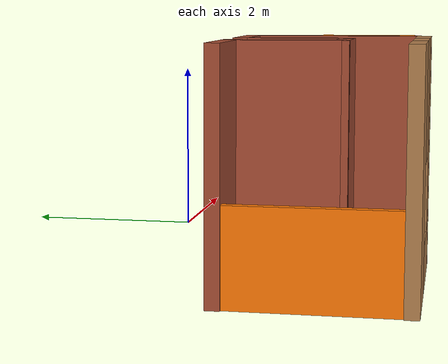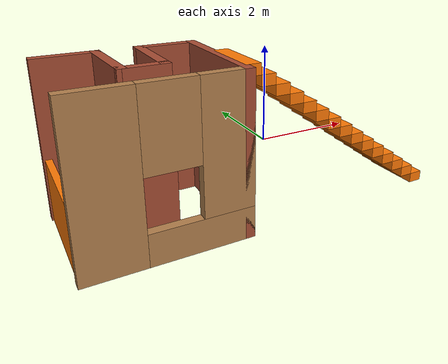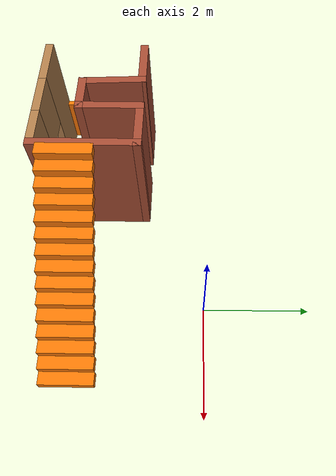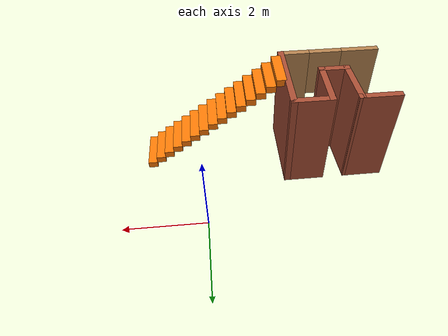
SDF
<?xml version='1.0'?>
<sdf version='1.6'>
  <model name='room_playground'>
    <pose frame=''>-1.4975 -2.12334 0 0 -0 0</pose>
    <link name='Stairs_0'>
      <visual name='Stairs_0_Visual_0'>
        <pose frame=''>2.86083 -0.316664 0.083333 0 -0 -1.5708</pose>
        <geometry>
          <box>
            <size>1 0.233333 0.166667</size>
          </box>
        </geometry>
        <material>
          <script>
            <uri>file://media/materials/scripts/gazebo.material</uri>
            <name>Gazebo/Grey</name>
          </script>
          <ambient>0.996078 0.47451 0.0196078 1</ambient>
        </material>
        <meta>
          <layer>0</layer>
        </meta>
      </visual>
      <collision name='Stairs_0_Collision_0'>
        <geometry>
          <box>
            <size>1 0.233333 0.166667</size>
          </box>
        </geometry>
        <pose frame=''>2.86083 -0.316664 0.083333 0 -0 -1.5708</pose>
      </collision>
      <visual name='Stairs_0_Visual_1'>
        <pose frame=''>2.6275 -0.316664 0.25 0 -0 -1.5708</pose>
        <geometry>
          <box>
            <size>1 0.233333 0.166667</size>
          </box>
        </geometry>
        <material>
          <script>
            <uri>file://media/materials/scripts/gazebo.material</uri>
            <name>Gazebo/Grey</name>
          </script>
          <ambient>0.996078 0.47451 0.0196078 1</ambient>
        </material>
        <meta>
          <layer>0</layer>
        </meta>
      </visual>
      <collision name='Stairs_0_Collision_1'>
        <geometry>
          <box>
            <size>1 0.233333 0.166667</size>
          </box>
        </geometry>
        <pose frame=''>2.6275 -0.316664 0.25 0 -0 -1.5708</pose>
      </collision>
      <visual name='Stairs_0_Visual_2'>
        <pose frame=''>2.39417 -0.316664 0.416667 0 -0 -1.5708</pose>
        <geometry>
          <box>
            <size>1 0.233333 0.166667</size>
          </box>
        </geometry>
        <material>
          <script>
            <uri>file://media/materials/scripts/gazebo.material</uri>
            <name>Gazebo/Grey</name>
          </script>
          <ambient>0.996078 0.47451 0.0196078 1</ambient>
        </material>
        <meta>
          <layer>0</layer>
        </meta>
      </visual>
      <collision name='Stairs_0_Collision_2'>
        <geometry>
          <box>
            <size>1 0.233333 0.166667</size>
          </box>
        </geometry>
        <pose frame=''>2.39417 -0.316664 0.416667 0 -0 -1.5708</pose>
      </collision>
      <visual name='Stairs_0_Visual_3'>
        <pose frame=''>2.16083 -0.316664 0.583333 0 -0 -1.5708</pose>
        <geometry>
          <box>
            <size>1 0.233333 0.166667</size>
          </box>
        </geometry>
        <material>
          <script>
            <uri>file://media/materials/scripts/gazebo.material</uri>
            <name>Gazebo/Grey</name>
          </script>
          <ambient>0.996078 0.47451 0.0196078 1</ambient>
        </material>
        <meta>
          <layer>0</layer>
        </meta>
      </visual>
      <collision name='Stairs_0_Collision_3'>
        <geometry>
          <box>
            <size>1 0.233333 0.166667</size>
          </box>
        </geometry>
        <pose frame=''>2.16083 -0.316664 0.583333 0 -0 -1.5708</pose>
      </collision>
      <visual name='Stairs_0_Visual_4'>
        <pose frame=''>1.9275 -0.316664 0.75 0 -0 -1.5708</pose>
        <geometry>
          <box>
            <size>1 0.233333 0.166667</size>
          </box>
        </geometry>
        <material>
          <script>
            <uri>file://media/materials/scripts/gazebo.material</uri>
            <name>Gazebo/Grey</name>
          </script>
          <ambient>0.996078 0.47451 0.0196078 1</ambient>
        </material>
        <meta>
          <layer>0</layer>
        </meta>
      </visual>
      <collision name='Stairs_0_Collision_4'>
        <geometry>
          <box>
            <size>1 0.233333 0.166667</size>
          </box>
        </geometry>
        <pose frame=''>1.9275 -0.316664 0.75 0 -0 -1.5708</pose>
      </collision>
      <visual name='Stairs_0_Visual_5'>
        <pose frame=''>1.69417 -0.316664 0.916667 0 -0 -1.5708</pose>
        <geometry>
          <box>
            <size>1 0.233333 0.166667</size>
          </box>
        </geometry>
        <material>
          <script>
            <uri>file://media/materials/scripts/gazebo.material</uri>
            <name>Gazebo/Grey</name>
          </script>
          <ambient>0.996078 0.47451 0.0196078 1</ambient>
        </material>
        <meta>
          <layer>0</layer>
        </meta>
      </visual>
      <collision name='Stairs_0_Collision_5'>
        <geometry>
          <box>
            <size>1 0.233333 0.166667</size>
          </box>
        </geometry>
        <pose frame=''>1.69417 -0.316664 0.916667 0 -0 -1.5708</pose>
      </collision>
      <visual name='Stairs_0_Visual_6'>
        <pose frame=''>1.46083 -0.316664 1.08333 0 -0 -1.5708</pose>
        <geometry>
          <box>
            <size>1 0.233333 0.166667</size>
          </box>
        </geometry>
        <material>
          <script>
            <uri>file://media/materials/scripts/gazebo.material</uri>
            <name>Gazebo/Grey</name>
          </script>
          <ambient>0.996078 0.47451 0.0196078 1</ambient>
        </material>
        <meta>
          <layer>0</layer>
        </meta>
      </visual>
      <collision name='Stairs_0_Collision_6'>
        <geometry>
          <box>
            <size>1 0.233333 0.166667</size>
          </box>
        </geometry>
        <pose frame=''>1.46083 -0.316664 1.08333 0 -0 -1.5708</pose>
      </collision>
      <visual name='Stairs_0_Visual_7'>
        <pose frame=''>1.2275 -0.316664 1.25 0 -0 -1.5708</pose>
        <geometry>
          <box>
            <size>1 0.233333 0.166667</size>
          </box>
        </geometry>
        <material>
          <script>
            <uri>file://media/materials/scripts/gazebo.material</uri>
            <name>Gazebo/Grey</name>
          </script>
          <ambient>0.996078 0.47451 0.0196078 1</ambient>
        </material>
        <meta>
          <layer>0</layer>
        </meta>
      </visual>
      <collision name='Stairs_0_Collision_7'>
        <geometry>
          <box>
            <size>1 0.233333 0.166667</size>
          </box>
        </geometry>
        <pose frame=''>1.2275 -0.316664 1.25 0 -0 -1.5708</pose>
      </collision>
      <visual name='Stairs_0_Visual_8'>
        <pose frame=''>0.994166 -0.316664 1.41667 0 -0 -1.5708</pose>
        <geometry>
          <box>
            <size>1 0.233333 0.166667</size>
          </box>
        </geometry>
        <material>
          <script>
            <uri>file://media/materials/scripts/gazebo.material</uri>
            <name>Gazebo/Grey</name>
          </script>
          <ambient>0.996078 0.47451 0.0196078 1</ambient>
        </material>
        <meta>
          <layer>0</layer>
        </meta>
      </visual>
      <collision name='Stairs_0_Collision_8'>
        <geometry>
          <box>
            <size>1 0.233333 0.166667</size>
          </box>
        </geometry>
        <pose frame=''>0.994166 -0.316664 1.41667 0 -0 -1.5708</pose>
      </collision>
      <visual name='Stairs_0_Visual_9'>
        <pose frame=''>0.760833 -0.316664 1.58333 0 -0 -1.5708</pose>
        <geometry>
          <box>
            <size>1 0.233333 0.166667</size>
          </box>
        </geometry>
        <material>
          <script>
            <uri>file://media/materials/scripts/gazebo.material</uri>
            <name>Gazebo/Grey</name>
          </script>
          <ambient>0.996078 0.47451 0.0196078 1</ambient>
        </material>
        <meta>
          <layer>0</layer>
        </meta>
      </visual>
      <collision name='Stairs_0_Collision_9'>
        <geometry>
          <box>
            <size>1 0.233333 0.166667</size>
          </box>
        </geometry>
        <pose frame=''>0.760833 -0.316664 1.58333 0 -0 -1.5708</pose>
      </collision>
      <visual name='Stairs_0_Visual_10'>
        <pose frame=''>0.5275 -0.316664 1.75 0 -0 -1.5708</pose>
        <geometry>
          <box>
            <size>1 0.233333 0.166667</size>
          </box>
        </geometry>
        <material>
          <script>
            <uri>file://media/materials/scripts/gazebo.material</uri>
            <name>Gazebo/Grey</name>
          </script>
          <ambient>0.996078 0.47451 0.0196078 1</ambient>
        </material>
        <meta>
          <layer>0</layer>
        </meta>
      </visual>
      <collision name='Stairs_0_Collision_10'>
        <geometry>
          <box>
            <size>1 0.233333 0.166667</size>
          </box>
        </geometry>
        <pose frame=''>0.5275 -0.316664 1.75 0 -0 -1.5708</pose>
      </collision>
      <visual name='Stairs_0_Visual_11'>
        <pose frame=''>0.294166 -0.316664 1.91667 0 -0 -1.5708</pose>
        <geometry>
          <box>
            <size>1 0.233333 0.166667</size>
          </box>
        </geometry>
        <material>
          <script>
            <uri>file://media/materials/scripts/gazebo.material</uri>
            <name>Gazebo/Grey</name>
          </script>
          <ambient>0.996078 0.47451 0.0196078 1</ambient>
        </material>
        <meta>
          <layer>0</layer>
        </meta>
      </visual>
      <collision name='Stairs_0_Collision_11'>
        <geometry>
          <box>
            <size>1 0.233333 0.166667</size>
          </box>
        </geometry>
        <pose frame=''>0.294166 -0.316664 1.91667 0 -0 -1.5708</pose>
      </collision>
      <visual name='Stairs_0_Visual_12'>
        <pose frame=''>0.060833 -0.316664 2.08333 0 -0 -1.5708</pose>
        <geometry>
          <box>
            <size>1 0.233333 0.166667</size>
          </box>
        </geometry>
        <material>
          <script>
            <uri>file://media/materials/scripts/gazebo.material</uri>
            <name>Gazebo/Grey</name>
          </script>
          <ambient>0.996078 0.47451 0.0196078 1</ambient>
        </material>
        <meta>
          <layer>0</layer>
        </meta>
      </visual>
      <collision name='Stairs_0_Collision_12'>
        <geometry>
          <box>
            <size>1 0.233333 0.166667</size>
          </box>
        </geometry>
        <pose frame=''>0.060833 -0.316664 2.08333 0 -0 -1.5708</pose>
      </collision>
      <visual name='Stairs_0_Visual_13'>
        <pose frame=''>-0.1725 -0.316664 2.25 0 -0 -1.5708</pose>
        <geometry>
          <box>
            <size>1 0.233333 0.166667</size>
          </box>
        </geometry>
        <material>
          <script>
            <uri>file://media/materials/scripts/gazebo.material</uri>
            <name>Gazebo/Grey</name>
          </script>
          <ambient>0.996078 0.47451 0.0196078 1</ambient>
        </material>
        <meta>
          <layer>0</layer>
        </meta>
      </visual>
      <collision name='Stairs_0_Collision_13'>
        <geometry>
          <box>
            <size>1 0.233333 0.166667</size>
          </box>
        </geometry>
        <pose frame=''>-0.1725 -0.316664 2.25 0 -0 -1.5708</pose>
      </collision>
      <visual name='Stairs_0_Visual_14'>
        <pose frame=''>-0.405834 -0.316664 2.41667 0 -0 -1.5708</pose>
        <geometry>
          <box>
            <size>1 0.233333 0.166667</size>
          </box>
        </geometry>
        <material>
          <script>
            <uri>file://media/materials/scripts/gazebo.material</uri>
            <name>Gazebo/Grey</name>
          </script>
          <ambient>0.996078 0.47451 0.0196078 1</ambient>
        </material>
        <meta>
          <layer>0</layer>
        </meta>
      </visual>
      <collision name='Stairs_0_Collision_14'>
        <geometry>
          <box>
            <size>1 0.233333 0.166667</size>
          </box>
        </geometry>
        <pose frame=''>-0.405834 -0.316664 2.41667 0 -0 -1.5708</pose>
      </collision>
    </link>
    <link name='Wall_0'>
      <collision name='Wall_0_Collision'>
        <geometry>
          <box>
            <size>1 0.15 2.5</size>
          </box>
        </geometry>
        <pose frame=''>0 0 1.25 0 -0 0</pose>
      </collision>
      <visual name='Wall_0_Visual'>
        <pose frame=''>0 0 1.25 0 -0 0</pose>
        <geometry>
          <box>
            <size>1 0.15 2.5</size>
          </box>
        </geometry>
        <material>
          <script>
            <uri>file://media/materials/scripts/gazebo.material</uri>
            <name>Gazebo/Bricks</name>
          </script>
          <ambient>1 1 1 1</ambient>
        </material>
        <meta>
          <layer>0</layer>
        </meta>
      </visual>
      <pose frame=''>-2.4775 0.923336 0 0 -0 3.14159</pose>
    </link>
    <link name='Wall_1'>
      <collision name='Wall_1_Collision'>
        <geometry>
          <box>
            <size>1.95 0.1 1</size>
          </box>
        </geometry>
        <pose frame=''>0 0 0.5 0 -0 0</pose>
      </collision>
      <visual name='Wall_1_Visual'>
        <pose frame=''>0 0 0.5 0 -0 0</pose>
        <geometry>
          <box>
            <size>1.95 0.1 1</size>
          </box>
        </geometry>
        <material>
          <script>
            <uri>file://media/materials/scripts/gazebo.material</uri>
            <name>Gazebo/Grey</name>
          </script>
          <ambient>0.996078 0.47451 0.0196078 1</ambient>
        </material>
        <meta>
          <layer>0</layer>
        </meta>
      </visual>
      <pose frame=''>-2.9025 -0.001664 0 0 0 -1.5708</pose>
    </link>
    <link name='Wall_2'>
      <pose frame=''>-1.7275 -0.926664 0 0 -0 0</pose>
      <visual name='Wall_2_Visual_0'>
        <pose frame=''>-0.7875 0 1.25 0 -0 0</pose>
        <geometry>
          <box>
            <size>0.925 0.15 2.5</size>
          </box>
        </geometry>
        <material>
          <script>
            <uri>file://media/materials/scripts/gazebo.material</uri>
            <name>Gazebo/Wood</name>
          </script>
          <ambient>1 1 1 1</ambient>
        </material>
        <meta>
          <layer>0</layer>
        </meta>
      </visual>
      <collision name='Wall_2_Collision_0'>
        <geometry>
          <box>
            <size>0.925 0.15 2.5</size>
          </box>
        </geometry>
        <pose frame=''>-0.7875 0 1.25 0 -0 0</pose>
      </collision>
      <visual name='Wall_2_Visual_1'>
        <pose frame=''>0.4625 0 0.25 0 -0 0</pose>
        <geometry>
          <box>
            <size>1.575 0.15 0.5</size>
          </box>
        </geometry>
        <material>
          <script>
            <uri>file://media/materials/scripts/gazebo.material</uri>
            <name>Gazebo/Wood</name>
          </script>
          <ambient>1 1 1 1</ambient>
        </material>
        <meta>
          <layer>0</layer>
        </meta>
      </visual>
      <collision name='Wall_2_Collision_1'>
        <geometry>
          <box>
            <size>1.575 0.15 0.5</size>
          </box>
        </geometry>
        <pose frame=''>0.4625 0 0.25 0 -0 0</pose>
      </collision>
      <visual name='Wall_2_Visual_2'>
        <pose frame=''>0.8625 0 1.5 0 -0 0</pose>
        <geometry>
          <box>
            <size>0.775 0.15 2</size>
          </box>
        </geometry>
        <material>
          <script>
            <uri>file://media/materials/scripts/gazebo.material</uri>
            <name>Gazebo/Wood</name>
          </script>
          <ambient>1 1 1 1</ambient>
        </material>
        <meta>
          <layer>0</layer>
        </meta>
      </visual>
      <collision name='Wall_2_Collision_2'>
        <geometry>
          <box>
            <size>0.775 0.15 2</size>
          </box>
        </geometry>
        <pose frame=''>0.8625 0 1.5 0 -0 0</pose>
      </collision>
      <visual name='Wall_2_Visual_3'>
        <pose frame=''>0.075 0 1.9 0 -0 0</pose>
        <geometry>
          <box>
            <size>0.8 0.15 1.2</size>
          </box>
        </geometry>
        <material>
          <script>
            <uri>file://media/materials/scripts/gazebo.material</uri>
            <name>Gazebo/Wood</name>
          </script>
          <ambient>1 1 1 1</ambient>
        </material>
        <meta>
          <layer>0</layer>
        </meta>
      </visual>
      <collision name='Wall_2_Collision_3'>
        <geometry>
          <box>
            <size>0.8 0.15 1.2</size>
          </box>
        </geometry>
        <pose frame=''>0.075 0 1.9 0 -0 0</pose>
      </collision>
    </link>
    <link name='Wall_3'>
      <collision name='Wall_3_Collision'>
        <geometry>
          <box>
            <size>2 0.15 2.5</size>
          </box>
        </geometry>
        <pose frame=''>0 0 1.25 0 -0 0</pose>
      </collision>
      <visual name='Wall_3_Visual'>
        <pose frame=''>0 0 1.25 0 -0 0</pose>
        <geometry>
          <box>
            <size>2 0.15 2.5</size>
          </box>
        </geometry>
        <material>
          <script>
            <uri>file://media/materials/scripts/gazebo.material</uri>
            <name>Gazebo/Bricks</name>
          </script>
          <ambient>1 1 1 1</ambient>
        </material>
        <meta>
          <layer>0</layer>
        </meta>
      </visual>
      <pose frame=''>-0.5525 -0.001664 0 0 -0 1.5708</pose>
    </link>
    <link name='Wall_4'>
      <collision name='Wall_4_Collision'>
        <geometry>
          <box>
            <size>1 0.15 2.5</size>
          </box>
        </geometry>
        <pose frame=''>0 0 1.25 0 -0 0</pose>
      </collision>
      <visual name='Wall_4_Visual'>
        <pose frame=''>0 0 1.25 0 -0 0</pose>
        <geometry>
          <box>
            <size>1 0.15 2.5</size>
          </box>
        </geometry>
        <material>
          <script>
            <uri>file://media/materials/scripts/gazebo.material</uri>
            <name>Gazebo/Bricks</name>
          </script>
          <ambient>1 1 1 1</ambient>
        </material>
        <meta>
          <layer>0</layer>
        </meta>
      </visual>
      <pose frame=''>-0.9775 0.923336 0 0 -0 3.14159</pose>
    </link>
    <link name='Wall_5'>
      <collision name='Wall_5_Collision'>
        <geometry>
          <box>
            <size>1.25 0.15 2.5</size>
          </box>
        </geometry>
        <pose frame=''>0 0 1.25 0 -0 0</pose>
      </collision>
      <visual name='Wall_5_Visual'>
        <pose frame=''>0 0 1.25 0 -0 0</pose>
        <geometry>
          <box>
            <size>1.25 0.15 2.5</size>
          </box>
        </geometry>
        <material>
          <script>
            <uri>file://media/materials/scripts/gazebo.material</uri>
            <name>Gazebo/Bricks</name>
          </script>
          <ambient>1 1 1 1</ambient>
        </material>
        <meta>
          <layer>0</layer>
        </meta>
      </visual>
      <pose frame=''>-1.4025 0.373336 0 0 0 -1.5708</pose>
    </link>
    <link name='Wall_6'>
      <collision name='Wall_6_Collision'>
        <geometry>
          <box>
            <size>0.75 0.15 2.5</size>
          </box>
        </geometry>
        <pose frame=''>0 0 1.25 0 -0 0</pose>
      </collision>
      <visual name='Wall_6_Visual'>
        <pose frame=''>0 0 1.25 0 -0 0</pose>
        <geometry>
          <box>
            <size>0.75 0.15 2.5</size>
          </box>
        </geometry>
        <material>
          <script>
            <uri>file://media/materials/scripts/gazebo.material</uri>
            <name>Gazebo/Bricks</name>
          </script>
          <ambient>1 1 1 1</ambient>
        </material>
        <meta>
          <layer>0</layer>
        </meta>
      </visual>
      <pose frame=''>-1.7025 -0.176664 0 0 -0 3.14159</pose>
    </link>
    <link name='Wall_7'>
      <collision name='Wall_7_Collision'>
        <geometry>
          <box>
            <size>1.25114 0.15 2.5</size>
          </box>
        </geometry>
        <pose frame=''>0 0 1.25 0 -0 0</pose>
      </collision>
      <visual name='Wall_7_Visual'>
        <pose frame=''>0 0 1.25 0 -0 0</pose>
        <geometry>
          <box>
            <size>1.25114 0.15 2.5</size>
          </box>
        </geometry>
        <material>
          <script>
            <uri>file://media/materials/scripts/gazebo.material</uri>
            <name>Gazebo/Bricks</name>
          </script>
          <ambient>1 1 1 1</ambient>
        </material>
        <meta>
          <layer>0</layer>
        </meta>
      </visual>
      <pose frame=''>-2.0275 0.373336 0 0 -0 1.61622</pose>
    </link>
    <static>1</static>
  </model>
</sdf>
